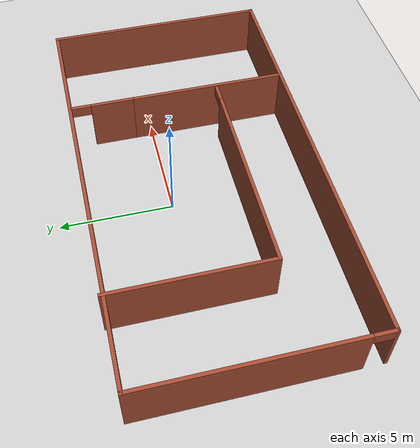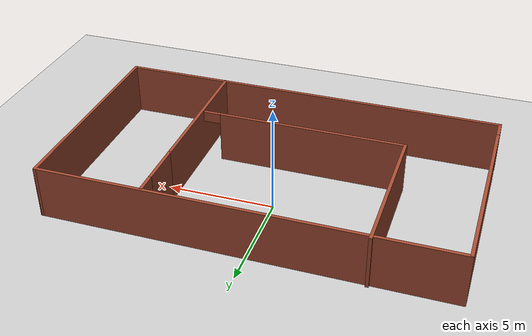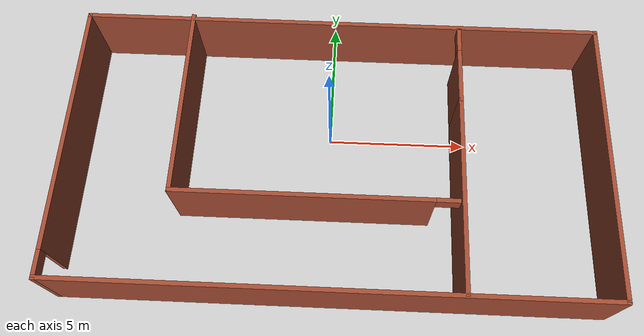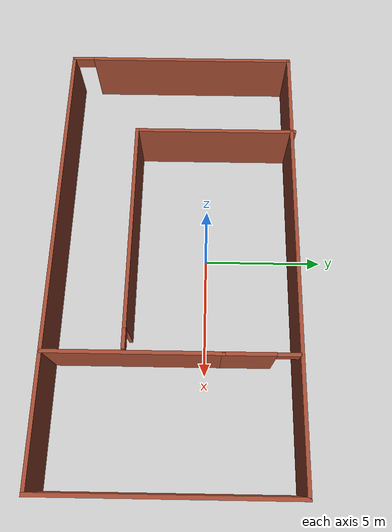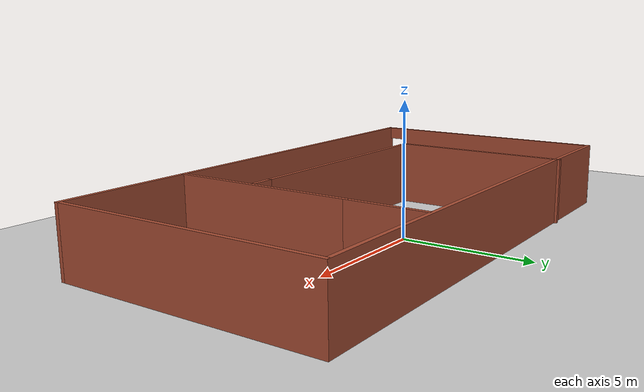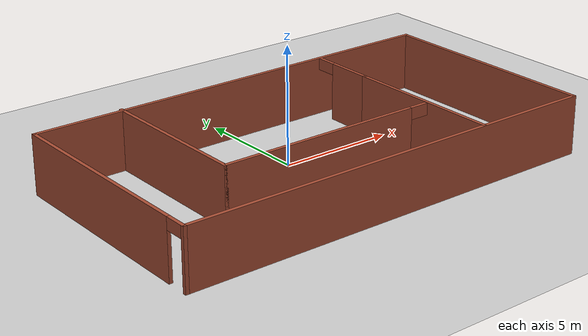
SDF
<sdf version="1.7">
 <world name="default">
  <light name="sun" type="directional">
   <pose>0 0 10 0 -0 0</pose>
   <diffuse>0.8 0.8 0.8 1</diffuse>
   <specular>0.2 0.2 0.2 1</specular>
   <attenuation>
    <range>1000</range>
    <constant>0.9</constant>
    <linear>0.01</linear>
    <quadratic>0.001</quadratic>
   </attenuation>
   <direction>-0.5 0.1 -0.9</direction>
   <spot><inner_angle>0</inner_angle><outer_angle>0</outer_angle><falloff>0</falloff></spot>
  </light>
  <model name="ground_plane">
   <static>1</static>
   <link name="link">
    <collision name="collision">
     <geometry><plane><normal>0 0 1</normal><size>100 100</size></plane></geometry>
     <surface>
      <contact><collide_bitmask>65535</collide_bitmask></contact>
      <friction><ode><mu>100</mu><mu2>50</mu2></ode></friction>
     </surface>
    </collision>
    <visual name="visual">
     <cast_shadows>0</cast_shadows>
     <geometry><plane><normal>0 0 1</normal><size>100 100</size></plane></geometry>
     <material>
      <script><uri>file://media/materials/scripts/gazebo.material</uri><name>Gazebo/Grey</name></script>
     </material>
    </visual>
   </link>
  </model>
  <gravity>0 0 -9.8</gravity>
  <magnetic_field>6e-06 2.3e-05 -4.2e-05</magnetic_field>
  <atmosphere type="adiabatic"/>
  <physics type="ode">
   <max_step_size>0.001</max_step_size>
   <real_time_factor>1</real_time_factor>
   <real_time_update_rate>1000</real_time_update_rate>
  </physics>
  <scene><ambient>0.4 0.4 0.4 1</ambient><background>0.7 0.7 0.7 1</background><shadows>1</shadows></scene>
  <audio><device>default</device></audio>
  <spherical_coordinates>
   <surface_model>EARTH_WGS84</surface_model>
   <latitude_deg>0</latitude_deg>
   <longitude_deg>0</longitude_deg>
   <elevation>0</elevation>
   <heading_deg>0</heading_deg>
  </spherical_coordinates>
  <model name="test1">
   <pose>0.24275 -1.20591 0 0 -0 0</pose>
   <link name="Wall_10">
    <collision name="Wall_10_Collision">
     <geometry><box><size>7 0.15 2.5</size></box></geometry>
     <pose>0 0 1.25 0 -0 0</pose>
    </collision>
    <visual name="Wall_10_Visual">
     <pose>0 0 1.25 0 -0 0</pose>
     <geometry><box><size>7 0.15 2.5</size></box></geometry>
     <material>
      <script><uri>file://media/materials/scripts/gazebo.material</uri><name>Gazebo/Bricks</name></script>
      <ambient>1 1 1 1</ambient>
     </material>
     <meta><layer>0</layer></meta>
    </visual>
    <pose>-5.45976 1.55316 0 0 -0 -1.5708</pose>
   </link>
   <link name="Wall_12">
    <collision name="Wall_12_Collision">
     <geometry><box><size>7 0.15 2.5</size></box></geometry>
     <pose>0 0 1.25 0 -0 0</pose>
    </collision>
    <visual name="Wall_12_Visual">
     <pose>0 0 1.25 0 -0 0</pose>
     <geometry><box><size>7 0.15 2.5</size></box></geometry>
     <material>
      <script><uri>file://media/materials/scripts/gazebo.material</uri><name>Gazebo/Bricks</name></script>
      <ambient>1 1 1 1</ambient>
     </material>
     <meta><layer>0</layer></meta>
    </visual>
    <pose>4.33049 -1.50846 0 0 -0 1.5708</pose>
   </link>
   <link name="Wall_14">
    <pose>-0.659765 -1.87184 0 0 -0 0</pose>
    <visual name="Wall_14_Visual_0">
     <pose>-0.410109 0 1.25 0 -0 0</pose>
     <geometry><box><size>8.92978 0.15 2.5</size></box></geometry>
     <material>
      <script><uri>file://media/materials/scripts/gazebo.material</uri><name>Gazebo/Bricks</name></script>
      <ambient>1 1 1 1</ambient>
     </material>
     <meta><layer>0</layer></meta>
    </visual>
    <collision name="Wall_14_Collision_0">
     <geometry><box><size>8.92978 0.15 2.5</size></box></geometry>
     <pose>-0.410109 0 1.25 0 -0 0</pose>
    </collision>
    <visual name="Wall_14_Visual_1">
     <pose>4.46489 0 2.25 0 -0 0</pose>
     <geometry><box><size>0.820217 0.15 0.5</size></box></geometry>
     <material>
      <script><uri>file://media/materials/scripts/gazebo.material</uri><name>Gazebo/Bricks</name></script>
      <ambient>1 1 1 1</ambient>
     </material>
     <meta><layer>0</layer></meta>
    </visual>
    <collision name="Wall_14_Collision_1">
     <geometry><box><size>0.820217 0.15 0.5</size></box></geometry>
     <pose>4.46489 0 2.25 0 -0 0</pose>
    </collision>
   </link>
   <link name="Wall_17">
    <pose>4.33049 3.34154 0 0 -0 1.5708</pose>
    <visual name="Wall_17_Visual_0">
     <pose>-0.460109 0 1.25 0 -0 0</pose>
     <geometry><box><size>2.07978 0.15 2.5</size></box></geometry>
     <material>
      <script><uri>file://media/materials/scripts/gazebo.material</uri><name>Gazebo/Bricks</name></script>
      <ambient>1 1 1 1</ambient>
     </material>
     <meta><layer>0</layer></meta>
    </visual>
    <collision name="Wall_17_Collision_0">
     <geometry><box><size>2.07978 0.15 2.5</size></box></geometry>
     <pose>-0.460109 0 1.25 0 -0 0</pose>
    </collision>
    <visual name="Wall_17_Visual_1">
     <pose>1.48989 0 1.25 0 -0 0</pose>
     <geometry><box><size>0.020217 0.15 2.5</size></box></geometry>
     <material>
      <script><uri>file://media/materials/scripts/gazebo.material</uri><name>Gazebo/Bricks</name></script>
      <ambient>1 1 1 1</ambient>
     </material>
     <meta><layer>0</layer></meta>
    </visual>
    <collision name="Wall_17_Collision_1">
     <geometry><box><size>0.020217 0.15 2.5</size></box></geometry>
     <pose>1.48989 0 1.25 0 -0 0</pose>
    </collision>
    <visual name="Wall_17_Visual_2">
     <pose>1.02978 0 2.25 0 -0 0</pose>
     <geometry><box><size>0.9 0.15 0.5</size></box></geometry>
     <material>
      <script><uri>file://media/materials/scripts/gazebo.material</uri><name>Gazebo/Bricks</name></script>
      <ambient>1 1 1 1</ambient>
     </material>
     <meta><layer>0</layer></meta>
    </visual>
    <collision name="Wall_17_Collision_2">
     <geometry><box><size>0.9 0.15 0.5</size></box></geometry>
     <pose>1.02978 0 2.25 0 -0 0</pose>
    </collision>
   </link>
   <link name="Wall_4">
    <collision name="Wall_4_Collision">
     <geometry><box><size>18.75 0.15 2.5</size></box></geometry>
     <pose>0 0 1.25 0 -0 0</pose>
    </collision>
    <visual name="Wall_4_Visual">
     <pose>0 0 1.25 0 -0 0</pose>
     <geometry><box><size>18.75 0.15 2.5</size></box></geometry>
     <material>
      <script><uri>file://media/materials/scripts/gazebo.material</uri><name>Gazebo/Bricks</name></script>
      <ambient>0.996078 0.47451 0.0196078 1</ambient>
     </material>
     <meta><layer>0</layer></meta>
    </visual>
    <pose>0 4.87184 0 0 -0 0</pose>
   </link>
   <link name="Wall_5">
    <collision name="Wall_5_Collision">
     <geometry><box><size>10 0.15 2.5</size></box></geometry>
     <pose>0 0 1.25 0 -0 0</pose>
    </collision>
    <visual name="Wall_5_Visual">
     <pose>0 0 1.25 0 -0 0</pose>
     <geometry><box><size>10 0.15 2.5</size></box></geometry>
     <material>
      <script><uri>file://media/materials/scripts/gazebo.material</uri><name>Gazebo/Bricks</name></script>
      <ambient>0.996078 0.47451 0.0196078 1</ambient>
     </material>
     <meta><layer>0</layer></meta>
    </visual>
    <pose>9.3 -0.053161 0 0 -0 -1.5708</pose>
   </link>
   <link name="Wall_6">
    <collision name="Wall_6_Collision">
     <geometry><box><size>18.75 0.15 2.5</size></box></geometry>
     <pose>0 0 1.25 0 -0 0</pose>
    </collision>
    <visual name="Wall_6_Visual">
     <pose>0 0 1.25 0 -0 0</pose>
     <geometry><box><size>18.75 0.15 2.5</size></box></geometry>
     <material>
      <script><uri>file://media/materials/scripts/gazebo.material</uri><name>Gazebo/Bricks</name></script>
      <ambient>0.996078 0.47451 0.0196078 1</ambient>
     </material>
     <meta><layer>0</layer></meta>
    </visual>
    <pose>0 -4.97816 0 0 -0 3.14159</pose>
   </link>
   <link name="Wall_7">
    <pose>-9.3 -0.053161 0 0 -0 1.5708</pose>
    <visual name="Wall_7_Visual_0">
     <pose>-4.96287 0 1.25 0 -0 0</pose>
     <geometry><box><size>0.074262 0.15 2.5</size></box></geometry>
     <material>
      <script><uri>file://media/materials/scripts/gazebo.material</uri><name>Gazebo/Bricks</name></script>
      <ambient>0.996078 0.47451 0.0196078 1</ambient>
     </material>
     <meta><layer>0</layer></meta>
    </visual>
    <collision name="Wall_7_Collision_0">
     <geometry><box><size>0.074262 0.15 2.5</size></box></geometry>
     <pose>-4.96287 0 1.25 0 -0 0</pose>
    </collision>
    <visual name="Wall_7_Visual_1">
     <pose>0.487131 0 1.25 0 -0 0</pose>
     <geometry><box><size>9.02574 0.15 2.5</size></box></geometry>
     <material>
      <script><uri>file://media/materials/scripts/gazebo.material</uri><name>Gazebo/Bricks</name></script>
      <ambient>0.996078 0.47451 0.0196078 1</ambient>
     </material>
     <meta><layer>0</layer></meta>
    </visual>
    <collision name="Wall_7_Collision_1">
     <geometry><box><size>9.02574 0.15 2.5</size></box></geometry>
     <pose>0.487131 0 1.25 0 -0 0</pose>
    </collision>
    <visual name="Wall_7_Visual_2">
     <pose>-4.47574 0 2.25 0 -0 0</pose>
     <geometry><box><size>0.9 0.15 0.5</size></box></geometry>
     <material>
      <script><uri>file://media/materials/scripts/gazebo.material</uri><name>Gazebo/Bricks</name></script>
      <ambient>0.996078 0.47451 0.0196078 1</ambient>
     </material>
     <meta><layer>0</layer></meta>
    </visual>
    <collision name="Wall_7_Collision_2">
     <geometry><box><size>0.9 0.15 0.5</size></box></geometry>
     <pose>-4.47574 0 2.25 0 -0 0</pose>
    </collision>
   </link>
   <static>1</static>
  </model>
 </world>
</sdf>
